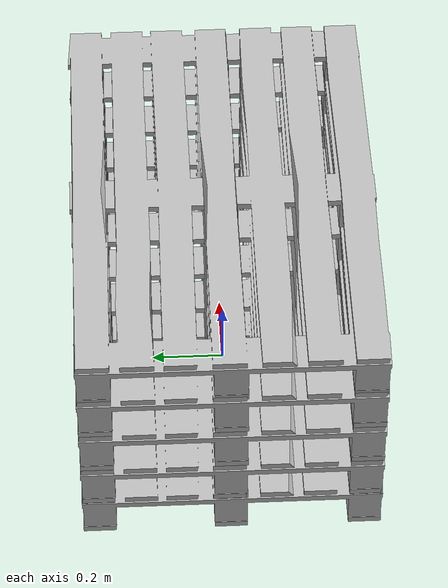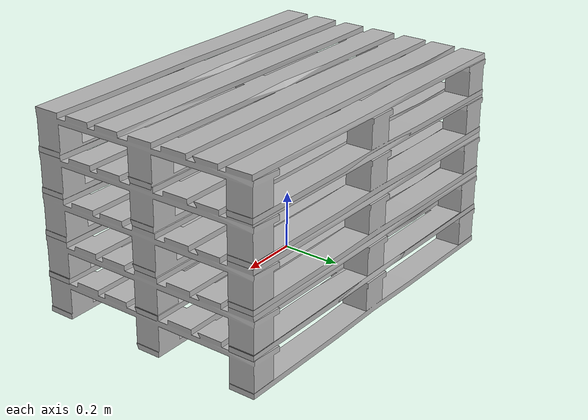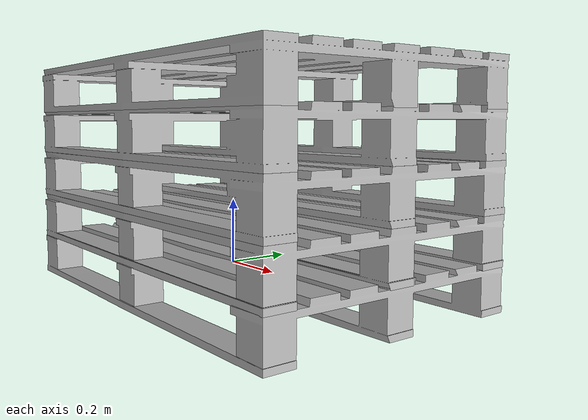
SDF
<?xml version="1.0" ?>
<sdf version="1.5">
  <model name="wooden_pallet_pile_5">
    <include>
      <name>pallet_0</name>
      <uri>model://wooden_pallet</uri>
      <pose>0 0 0.02 0 0 0</pose>
    </include>
    <include>
      <name>pallet_1</name>
      <uri>model://wooden_pallet</uri>
      <pose>0 0 0.145 0 0 0</pose>
    </include>
    <include>
      <name>pallet_2</name>
      <uri>model://wooden_pallet</uri>
      <pose>0 0 0.290 0 0 0</pose>
    </include>
    <include>
      <name>pallet_3</name>
      <uri>model://wooden_pallet</uri>
      <pose>0 0 0.435 0 0 0</pose>
    </include>
    <include>
      <name>pallet_4</name>
      <uri>model://wooden_pallet</uri>
      <pose>0 0 0.570 0 0 0</pose>
    </include>
    <joint name="link0_link1" type="fixed">
      <parent>pallet_0::link</parent>
      <child>pallet_1::link</child>
      <axis>
        <xyz>0 0 1</xyz>
        <use_parent_model_frame>true</use_parent_model_frame>
      </axis>
    </joint>
    <joint name="link1_link2" type="fixed">
      <parent>pallet_1::link</parent>
      <child>pallet_2::link</child>
      <axis>
        <xyz>0 0 1</xyz>
        <use_parent_model_frame>true</use_parent_model_frame>
      </axis>
    </joint>
    <joint name="link2_link3" type="fixed">
      <parent>pallet_2::link</parent>
      <child>pallet_3::link</child>
      <axis>
        <xyz>0 0 1</xyz>
        <use_parent_model_frame>true</use_parent_model_frame>
      </axis>
    </joint>
    <joint name="link3_link4" type="fixed">
      <parent>pallet_3::link</parent>
      <child>pallet_4::link</child>
      <axis>
        <xyz>0 0 1</xyz>
        <use_parent_model_frame>true</use_parent_model_frame>
      </axis>
    </joint>
  </model>
</sdf>

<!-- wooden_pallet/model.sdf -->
<sdf version="1.6">
  <model name="wooden pallet">
    <link name="link">
    <pose>0 0 0 1.57 0 1.57</pose>
      <inertial>
        <mass>20.0</mass>
        <inertia>
          <ixx>2.43</ixx>
          <ixy>0</ixy>
          <ixz>0</ixz>
          <iyy>1.10</iyy>
          <iyz>0</iyz>
          <izz>3.47</izz>
        </inertia>
      </inertial>
      <collision name="collision">
        <pose>0 0 0.05 0 0 0</pose>
        <geometry>
          <mesh>
            <scale>0.25 0.25 0.25</scale>
            <uri>model://wooden_pallet/meshes/pallet.obj</uri>
          </mesh>
        </geometry>
      </collision>
      <visual name="visual">
        <pose>0 0 0.05 0 0 0</pose>
        <geometry>
          <mesh>
            <scale>0.25 0.25 0.25</scale>
            <uri>model://wooden_pallet/meshes/pallet.obj</uri>
          </mesh>
        </geometry>
      </visual>
    </link>
  </model>
</sdf>
